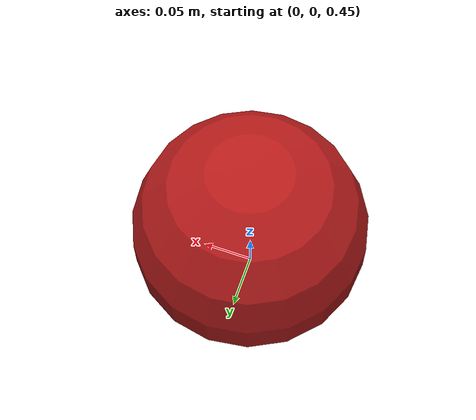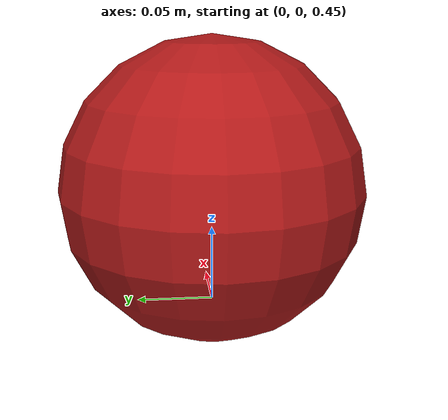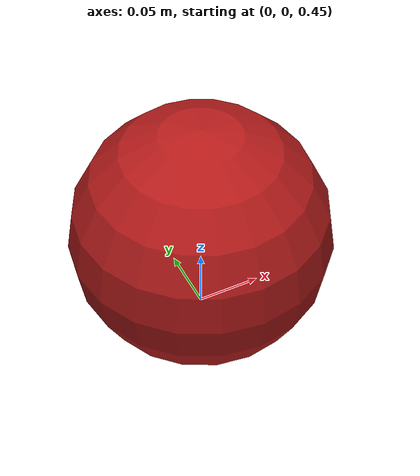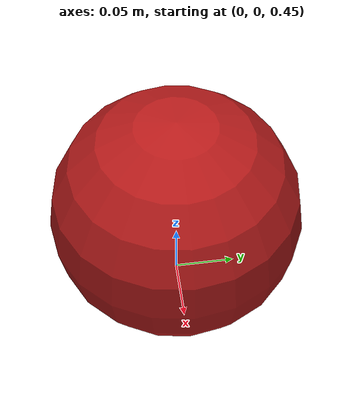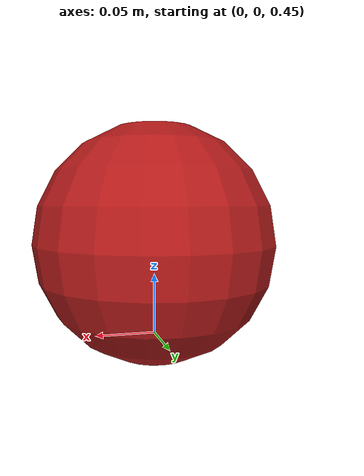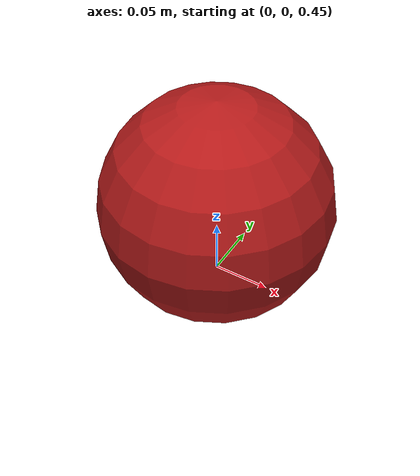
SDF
<?xml version="1.0" ?>
<sdf version="1.5">
  <model name="target_ball">
    <static>true</static>
    <pose>0 0 0 0 0 0</pose>
    <link name="link">
      <pose>0 0 0.527 0 0 0</pose>
      <visual name="visual">
        <geometry>
          <sphere>
            <radius>0.1</radius>
          </sphere>
        </geometry>
        <material>
          <ambient>0.6 0.1 0.1 1</ambient>
          <diffuse>0.7 0.1 0.1 1</diffuse>
          <specular>0 0 0 0</specular>
          <emissive>0.0 0 0 1</emissive>
        </material>
      </visual>

      <collision name="collision">
        <geometry>
          <sphere>
            <radius>0</radius>
          </sphere>
        </geometry>
        <surface>
          <bounce>
            <restitution_coefficient>0.0</restitution_coefficient>
            <threshold>0</threshold>
          </bounce>
          <contact>
            <ode>
              <max_vel>0</max_vel>
              <min_depth>0.1</min_depth>
            </ode>
          </contact>
        </surface>
      </collision>
    </link>
  </model>
</sdf>
